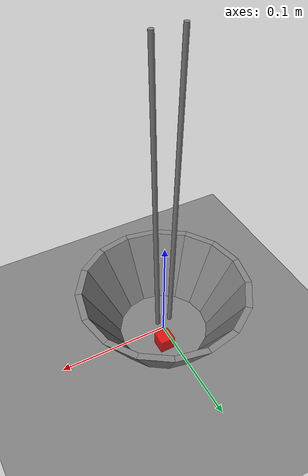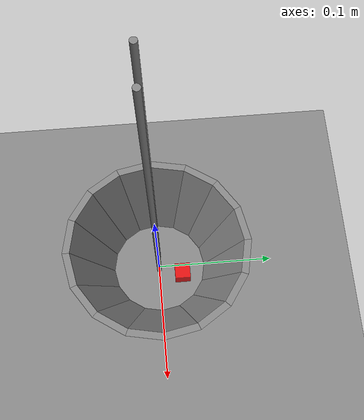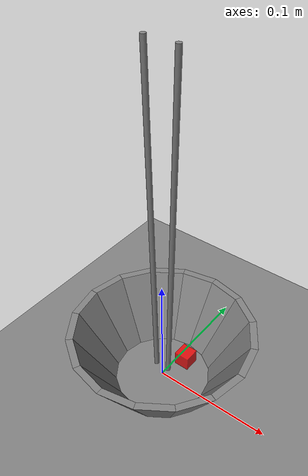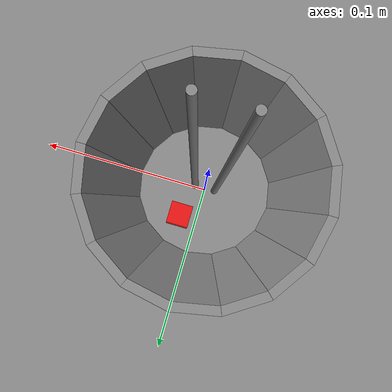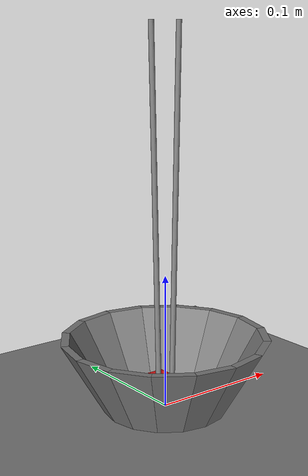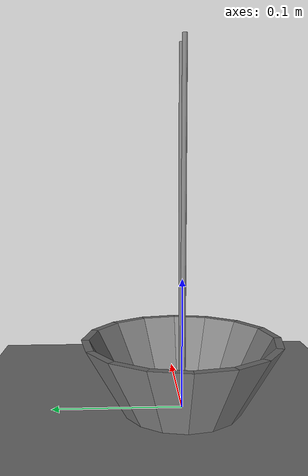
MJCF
<?xml version="1.0"?>
<mujoco model="stir-v2">
  <include file="stir_header.xml" />
  <worldbody>
    <include file="stir_worldbody.xml" />
    <include file="stir_bowl.xml" />
    <include file="stir_ingredients_13cube1.xml" />
  </worldbody>
  <include file="stir_contact1.xml" />
  <include file="stir_actuator_position_xyz.xml" />
</mujoco>

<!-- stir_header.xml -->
<mujoco>
  <option timestep="0.0025" />
  <asset>
    <mesh file="../meshes/cooking_bowl_bottom.stl" name="cooking_bowl_bottom" />
    <mesh file="../meshes/cooking_bowl_fragment.stl" name="cooking_bowl_fragment" />
  </asset>
  <default>
    <joint armature="100.0" damping="300" limited="true" />
  </default>
</mujoco>

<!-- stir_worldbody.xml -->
<mujoco>
  <light name="light0" directional="true" diffuse=".3 .3 .3" pos="-1 -1 1" dir="1 1 -1" />
  <light name="light1" directional="true" diffuse=".3 .3 .3" pos="1 -1 1" dir="-1 1 -1" />
  <light name="light2" directional="true" diffuse=".3 .3 .3" pos="0 1 1" dir="0 -1 -1" />
  <site name="world" pos="0 0 0" size="0.0001" />
  <geom name="floor" pos="0 0 0" size="1.0 1.0 0.00001" type="plane" condim="3" />
  <!-- refer to https://github.com/deepmind/mujoco/blob/main/test/engine/testdata/refsite.xml -->
  <body name="tools" pos="0 0 0.01">
    <joint name="joint_tool_position_x" type="slide" pos="0 0 0" axis="1 0 0" range="-10.0 10.0" />
    <joint name="joint_tool_position_y" type="slide" pos="0 0 0" axis="0 1 0" range="-10.0 10.0" />
    <joint name="joint_tool_position_z" type="slide" pos="0 0 0" axis="0 0 1" range="-10.0 10.0" />
    <joint type="ball" />
    <site name="site_tools" pos="0 0 0" size="0.0001" />
    <geom name="geom_tool1" type="cylinder" size="0.002" fromto="0.012 0 0.27 0.006 0 0" />
    <geom name="geom_tool2" type="cylinder" size="0.002" fromto="-0.012 0 0.27 -0.006 0 0" />
  </body>
</mujoco>

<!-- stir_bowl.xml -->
<mujoco>
  <body name="bowl" pos="0 0 -0.006">
    <geom name="geom_bowl_fragment0" type="mesh" mesh="cooking_bowl_fragment" pos="0 0 0" euler="0 0 0.0" />
    <geom name="geom_bowl_fragment1" type="mesh" mesh="cooking_bowl_fragment" pos="0 0 0" euler="0 0 22.5" />
    <geom name="geom_bowl_fragment2" type="mesh" mesh="cooking_bowl_fragment" pos="0 0 0" euler="0 0 45.0" />
    <geom name="geom_bowl_fragment3" type="mesh" mesh="cooking_bowl_fragment" pos="0 0 0" euler="0 0 67.5" />
    <geom name="geom_bowl_fragment4" type="mesh" mesh="cooking_bowl_fragment" pos="0 0 0" euler="0 0 90.0" />
    <geom name="geom_bowl_fragment5" type="mesh" mesh="cooking_bowl_fragment" pos="0 0 0" euler="0 0 112.5" />
    <geom name="geom_bowl_fragment6" type="mesh" mesh="cooking_bowl_fragment" pos="0 0 0" euler="0 0 135.0" />
    <geom name="geom_bowl_fragment7" type="mesh" mesh="cooking_bowl_fragment" pos="0 0 0" euler="0 0 157.5" />
    <geom name="geom_bowl_fragment8" type="mesh" mesh="cooking_bowl_fragment" pos="0 0 0" euler="0 0 180.0" />
    <geom name="geom_bowl_fragment9" type="mesh" mesh="cooking_bowl_fragment" pos="0 0 0" euler="0 0 202.5" />
    <geom name="geom_bowl_fragment10" type="mesh" mesh="cooking_bowl_fragment" pos="0 0 0" euler="0 0 225.0" />
    <geom name="geom_bowl_fragment11" type="mesh" mesh="cooking_bowl_fragment" pos="0 0 0"
    euler="0 0 247.49999999999997" />
    <geom name="geom_bowl_fragment12" type="mesh" mesh="cooking_bowl_fragment" pos="0 0 0" euler="0 0 270.0" />
    <geom name="geom_bowl_fragment13" type="mesh" mesh="cooking_bowl_fragment" pos="0 0 0" euler="0 0 292.5" />
    <geom name="geom_bowl_fragment14" type="mesh" mesh="cooking_bowl_fragment" pos="0 0 0" euler="0 0 315.0" />
    <geom name="geom_bowl_fragment15" type="mesh" mesh="cooking_bowl_fragment" pos="0 0 0" euler="0 0 337.5" />
  </body>
</mujoco>

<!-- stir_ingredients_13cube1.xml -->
<mujoco>
  <body name="ingredient0" pos="0.01 0.02 0.01">
    <freejoint name="joint_ingredient0" />
    <geom name="geom_ingredient0" type="box" size="0.0065 0.0065 0.0065" rgba="1.0 0 0 0.8" />
  </body>
</mujoco>

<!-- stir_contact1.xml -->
<mujoco>
  <contact>
    <pair name="contact_pair0" geom1="floor" geom2="geom_ingredient0" friction="1 1 0.005 0.1 0.1" />
  </contact>
</mujoco>

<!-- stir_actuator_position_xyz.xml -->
<mujoco>
  <actuator>
    <position name="x" site="site_tools" refsite="world" gear="1 0 0 0 0 0" kp="200" />
    <position name="y" site="site_tools" refsite="world" gear="0 1 0 0 0 0" kp="200" />
    <position name="z" site="site_tools" refsite="world" gear="0 0 1 0 0 0" kp="280" />
  </actuator>
</mujoco>
